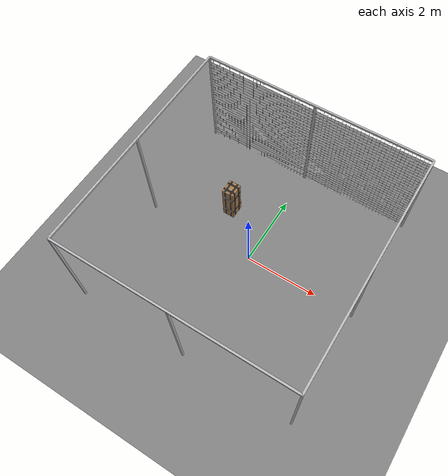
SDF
<sdf version="1.9">
 <world name="ecps295_lowbox_s19">
  <model name="ground_plane">
   <static>true</static>
   <link name="link">
    <collision name="collision">
     <geometry><plane><normal>0 0 1</normal><size>50 50</size></plane></geometry>
    </collision>
    <visual name="visual">
     <geometry><plane><normal>0 0 1</normal><size>50 50</size></plane></geometry>
     <material><ambient>0.5 0.5 0.5 1</ambient><diffuse>0.5 0.5 0.5 1</diffuse></material>
    </visual>
   </link>
  </model>
  <model name="cage_frame">
   <static>true</static>
   <link name="link">
    <visual name="post0_0">
     <pose>-3.050 -3.050 1.525 0 0 0.0000</pose>
     <geometry><box><size>0.050 0.050 3.050</size></box></geometry>
     <material><ambient>0.72 0.72 0.74 1</ambient><diffuse>0.72 0.72 0.74 1</diffuse></material>
    </visual>
    <visual name="post0_1">
     <pose>-3.050 0.000 1.525 0 0 0.0000</pose>
     <geometry><box><size>0.050 0.050 3.050</size></box></geometry>
     <material><ambient>0.72 0.72 0.74 1</ambient><diffuse>0.72 0.72 0.74 1</diffuse></material>
    </visual>
    <visual name="post0_2">
     <pose>-3.050 3.050 1.525 0 0 0.0000</pose>
     <geometry><box><size>0.050 0.050 3.050</size></box></geometry>
     <material><ambient>0.72 0.72 0.74 1</ambient><diffuse>0.72 0.72 0.74 1</diffuse></material>
    </visual>
    <visual name="post1_0">
     <pose>0.000 -3.050 1.525 0 0 0.0000</pose>
     <geometry><box><size>0.050 0.050 3.050</size></box></geometry>
     <material><ambient>0.72 0.72 0.74 1</ambient><diffuse>0.72 0.72 0.74 1</diffuse></material>
    </visual>
    <visual name="post1_2">
     <pose>0.000 3.050 1.525 0 0 0.0000</pose>
     <geometry><box><size>0.050 0.050 3.050</size></box></geometry>
     <material><ambient>0.72 0.72 0.74 1</ambient><diffuse>0.72 0.72 0.74 1</diffuse></material>
    </visual>
    <visual name="post2_0">
     <pose>3.050 -3.050 1.525 0 0 0.0000</pose>
     <geometry><box><size>0.050 0.050 3.050</size></box></geometry>
     <material><ambient>0.72 0.72 0.74 1</ambient><diffuse>0.72 0.72 0.74 1</diffuse></material>
    </visual>
    <visual name="post2_1">
     <pose>3.050 0.000 1.525 0 0 0.0000</pose>
     <geometry><box><size>0.050 0.050 3.050</size></box></geometry>
     <material><ambient>0.72 0.72 0.74 1</ambient><diffuse>0.72 0.72 0.74 1</diffuse></material>
    </visual>
    <visual name="post2_2">
     <pose>3.050 3.050 1.525 0 0 0.0000</pose>
     <geometry><box><size>0.050 0.050 3.050</size></box></geometry>
     <material><ambient>0.72 0.72 0.74 1</ambient><diffuse>0.72 0.72 0.74 1</diffuse></material>
    </visual>
    <visual name="railx0">
     <pose>0.000 -3.050 3.050 0 0 0.0000</pose>
     <geometry><box><size>6.100 0.050 0.050</size></box></geometry>
     <material><ambient>0.72 0.72 0.74 1</ambient><diffuse>0.72 0.72 0.74 1</diffuse></material>
    </visual>
    <visual name="raily0">
     <pose>-3.050 0.000 3.050 0 0 0.0000</pose>
     <geometry><box><size>0.050 6.100 0.050</size></box></geometry>
     <material><ambient>0.72 0.72 0.74 1</ambient><diffuse>0.72 0.72 0.74 1</diffuse></material>
    </visual>
    <visual name="railx1">
     <pose>0.000 3.050 3.050 0 0 0.0000</pose>
     <geometry><box><size>6.100 0.050 0.050</size></box></geometry>
     <material><ambient>0.72 0.72 0.74 1</ambient><diffuse>0.72 0.72 0.74 1</diffuse></material>
    </visual>
    <visual name="raily1">
     <pose>3.050 0.000 3.050 0 0 0.0000</pose>
     <geometry><box><size>0.050 6.100 0.050</size></box></geometry>
     <material><ambient>0.72 0.72 0.74 1</ambient><diffuse>0.72 0.72 0.74 1</diffuse></material>
    </visual>
   </link>
  </model>
  <model name="net_n">
   <static>true</static>
   <link name="link">
    <collision name="c">
     <pose>0.000 3.050 1.525 0 0 0</pose>
     <geometry><box><size>6.100 0.020 3.050</size></box></geometry>
    </collision>
    <visual name="v0">
     <pose>-3.050 3.050 1.525 0 0 0.0000</pose>
     <geometry><box><size>0.004 0.004 3.050</size></box></geometry>
     <material><ambient>0.16 0.16 0.16 1</ambient><diffuse>0.16 0.16 0.16 1</diffuse></material>
    </visual>
    <visual name="v1">
     <pose>-2.950 3.050 1.525 0 0 0.0000</pose>
     <geometry><box><size>0.004 0.004 3.050</size></box></geometry>
     <material><ambient>0.16 0.16 0.16 1</ambient><diffuse>0.16 0.16 0.16 1</diffuse></material>
    </visual>
    <visual name="v2">
     <pose>-2.850 3.050 1.525 0 0 0.0000</pose>
     <geometry><box><size>0.004 0.004 3.050</size></box></geometry>
     <material><ambient>0.16 0.16 0.16 1</ambient><diffuse>0.16 0.16 0.16 1</diffuse></material>
    </visual>
    <visual name="v3">
     <pose>-2.750 3.050 1.525 0 0 0.0000</pose>
     <geometry><box><size>0.004 0.004 3.050</size></box></geometry>
     <material><ambient>0.16 0.16 0.16 1</ambient><diffuse>0.16 0.16 0.16 1</diffuse></material>
    </visual>
    <visual name="v4">
     <pose>-2.650 3.050 1.525 0 0 0.0000</pose>
     <geometry><box><size>0.004 0.004 3.050</size></box></geometry>
     <material><ambient>0.16 0.16 0.16 1</ambient><diffuse>0.16 0.16 0.16 1</diffuse></material>
    </visual>
    <visual name="v5">
     <pose>-2.550 3.050 1.525 0 0 0.0000</pose>
     <geometry><box><size>0.004 0.004 3.050</size></box></geometry>
     <material><ambient>0.16 0.16 0.16 1</ambient><diffuse>0.16 0.16 0.16 1</diffuse></material>
    </visual>
    <visual name="v6">
     <pose>-2.450 3.050 1.525 0 0 0.0000</pose>
     <geometry><box><size>0.004 0.004 3.050</size></box></geometry>
     <material><ambient>0.16 0.16 0.16 1</ambient><diffuse>0.16 0.16 0.16 1</diffuse></material>
    </visual>
    <visual name="v7">
     <pose>-2.350 3.050 1.525 0 0 0.0000</pose>
     <geometry><box><size>0.004 0.004 3.050</size></box></geometry>
     <material><ambient>0.16 0.16 0.16 1</ambient><diffuse>0.16 0.16 0.16 1</diffuse></material>
    </visual>
    <visual name="v8">
     <pose>-2.250 3.050 1.525 0 0 0.0000</pose>
     <geometry><box><size>0.004 0.004 3.050</size></box></geometry>
     <material><ambient>0.16 0.16 0.16 1</ambient><diffuse>0.16 0.16 0.16 1</diffuse></material>
    </visual>
    <visual name="v9">
     <pose>-2.150 3.050 1.525 0 0 0.0000</pose>
     <geometry><box><size>0.004 0.004 3.050</size></box></geometry>
     <material><ambient>0.16 0.16 0.16 1</ambient><diffuse>0.16 0.16 0.16 1</diffuse></material>
    </visual>
    <visual name="v10">
     <pose>-2.050 3.050 1.525 0 0 0.0000</pose>
     <geometry><box><size>0.004 0.004 3.050</size></box></geometry>
     <material><ambient>0.16 0.16 0.16 1</ambient><diffuse>0.16 0.16 0.16 1</diffuse></material>
    </visual>
    <visual name="v11">
     <pose>-1.950 3.050 1.525 0 0 0.0000</pose>
     <geometry><box><size>0.004 0.004 3.050</size></box></geometry>
     <material><ambient>0.16 0.16 0.16 1</ambient><diffuse>0.16 0.16 0.16 1</diffuse></material>
    </visual>
    <visual name="v12">
     <pose>-1.850 3.050 1.525 0 0 0.0000</pose>
     <geometry><box><size>0.004 0.004 3.050</size></box></geometry>
     <material><ambient>0.16 0.16 0.16 1</ambient><diffuse>0.16 0.16 0.16 1</diffuse></material>
    </visual>
    <visual name="v13">
     <pose>-1.750 3.050 1.525 0 0 0.0000</pose>
     <geometry><box><size>0.004 0.004 3.050</size></box></geometry>
     <material><ambient>0.16 0.16 0.16 1</ambient><diffuse>0.16 0.16 0.16 1</diffuse></material>
    </visual>
    <visual name="v14">
     <pose>-1.650 3.050 1.525 0 0 0.0000</pose>
     <geometry><box><size>0.004 0.004 3.050</size></box></geometry>
     <material><ambient>0.16 0.16 0.16 1</ambient><diffuse>0.16 0.16 0.16 1</diffuse></material>
    </visual>
    <visual name="v15">
     <pose>-1.550 3.050 1.525 0 0 0.0000</pose>
     <geometry><box><size>0.004 0.004 3.050</size></box></geometry>
     <material><ambient>0.16 0.16 0.16 1</ambient><diffuse>0.16 0.16 0.16 1</diffuse></material>
    </visual>
    <visual name="v16">
     <pose>-1.450 3.050 1.525 0 0 0.0000</pose>
     <geometry><box><size>0.004 0.004 3.050</size></box></geometry>
     <material><ambient>0.16 0.16 0.16 1</ambient><diffuse>0.16 0.16 0.16 1</diffuse></material>
    </visual>
    <visual name="v17">
     <pose>-1.350 3.050 1.525 0 0 0.0000</pose>
     <geometry><box><size>0.004 0.004 3.050</size></box></geometry>
     <material><ambient>0.16 0.16 0.16 1</ambient><diffuse>0.16 0.16 0.16 1</diffuse></material>
    </visual>
    <visual name="v18">
     <pose>-1.250 3.050 1.525 0 0 0.0000</pose>
     <geometry><box><size>0.004 0.004 3.050</size></box></geometry>
     <material><ambient>0.16 0.16 0.16 1</ambient><diffuse>0.16 0.16 0.16 1</diffuse></material>
    </visual>
    <visual name="v19">
     <pose>-1.150 3.050 1.525 0 0 0.0000</pose>
     <geometry><box><size>0.004 0.004 3.050</size></box></geometry>
     <material><ambient>0.16 0.16 0.16 1</ambient><diffuse>0.16 0.16 0.16 1</diffuse></material>
    </visual>
    <visual name="v20">
     <pose>-1.050 3.050 1.525 0 0 0.0000</pose>
     <geometry><box><size>0.004 0.004 3.050</size></box></geometry>
     <material><ambient>0.16 0.16 0.16 1</ambient><diffuse>0.16 0.16 0.16 1</diffuse></material>
    </visual>
    <visual name="v21">
     <pose>-0.950 3.050 1.525 0 0 0.0000</pose>
     <geometry><box><size>0.004 0.004 3.050</size></box></geometry>
     <material><ambient>0.16 0.16 0.16 1</ambient><diffuse>0.16 0.16 0.16 1</diffuse></material>
    </visual>
    <visual name="v22">
     <pose>-0.850 3.050 1.525 0 0 0.0000</pose>
     <geometry><box><size>0.004 0.004 3.050</size></box></geometry>
     <material><ambient>0.16 0.16 0.16 1</ambient><diffuse>0.16 0.16 0.16 1</diffuse></material>
    </visual>
    <visual name="v23">
     <pose>-0.750 3.050 1.525 0 0 0.0000</pose>
     <geometry><box><size>0.004 0.004 3.050</size></box></geometry>
     <material><ambient>0.16 0.16 0.16 1</ambient><diffuse>0.16 0.16 0.16 1</diffuse></material>
    </visual>
    <visual name="v24">
     <pose>-0.650 3.050 1.525 0 0 0.0000</pose>
     <geometry><box><size>0.004 0.004 3.050</size></box></geometry>
     <material><ambient>0.16 0.16 0.16 1</ambient><diffuse>0.16 0.16 0.16 1</diffuse></material>
    </visual>
    <visual name="v25">
     <pose>-0.550 3.050 1.525 0 0 0.0000</pose>
     <geometry><box><size>0.004 0.004 3.050</size></box></geometry>
     <material><ambient>0.16 0.16 0.16 1</ambient><diffuse>0.16 0.16 0.16 1</diffuse></material>
    </visual>
    <visual name="v26">
     <pose>-0.450 3.050 1.525 0 0 0.0000</pose>
     <geometry><box><size>0.004 0.004 3.050</size></box></geometry>
     <material><ambient>0.16 0.16 0.16 1</ambient><diffuse>0.16 0.16 0.16 1</diffuse></material>
    </visual>
    <visual name="v27">
     <pose>-0.350 3.050 1.525 0 0 0.0000</pose>
     <geometry><box><size>0.004 0.004 3.050</size></box></geometry>
     <material><ambient>0.16 0.16 0.16 1</ambient><diffuse>0.16 0.16 0.16 1</diffuse></material>
    </visual>
    <visual name="v28">
     <pose>-0.250 3.050 1.525 0 0 0.0000</pose>
     <geometry><box><size>0.004 0.004 3.050</size></box></geometry>
     <material><ambient>0.16 0.16 0.16 1</ambient><diffuse>0.16 0.16 0.16 1</diffuse></material>
    </visual>
    <visual name="v29">
     <pose>-0.150 3.050 1.525 0 0 0.0000</pose>
     <geometry><box><size>0.004 0.004 3.050</size></box></geometry>
     <material><ambient>0.16 0.16 0.16 1</ambient><diffuse>0.16 0.16 0.16 1</diffuse></material>
    </visual>
    <visual name="v30">
     <pose>-0.050 3.050 1.525 0 0 0.0000</pose>
     <geometry><box><size>0.004 0.004 3.050</size></box></geometry>
     <material><ambient>0.16 0.16 0.16 1</ambient><diffuse>0.16 0.16 0.16 1</diffuse></material>
    </visual>
    <visual name="v31">
     <pose>0.050 3.050 1.525 0 0 0.0000</pose>
     <geometry><box><size>0.004 0.004 3.050</size></box></geometry>
     <material><ambient>0.16 0.16 0.16 1</ambient><diffuse>0.16 0.16 0.16 1</diffuse></material>
    </visual>
    <visual name="v32">
     <pose>0.150 3.050 1.525 0 0 0.0000</pose>
     <geometry><box><size>0.004 0.004 3.050</size></box></geometry>
     <material><ambient>0.16 0.16 0.16 1</ambient><diffuse>0.16 0.16 0.16 1</diffuse></material>
    </visual>
    <visual name="v33">
     <pose>0.250 3.050 1.525 0 0 0.0000</pose>
     <geometry><box><size>0.004 0.004 3.050</size></box></geometry>
     <material><ambient>0.16 0.16 0.16 1</ambient><diffuse>0.16 0.16 0.16 1</diffuse></material>
    </visual>
    <visual name="v34">
     <pose>0.350 3.050 1.525 0 0 0.0000</pose>
     <geometry><box><size>0.004 0.004 3.050</size></box></geometry>
     <material><ambient>0.16 0.16 0.16 1</ambient><diffuse>0.16 0.16 0.16 1</diffuse></material>
    </visual>
    <visual name="v35">
     <pose>0.450 3.050 1.525 0 0 0.0000</pose>
     <geometry><box><size>0.004 0.004 3.050</size></box></geometry>
     <material><ambient>0.16 0.16 0.16 1</ambient><diffuse>0.16 0.16 0.16 1</diffuse></material>
    </visual>
    <visual name="v36">
     <pose>0.550 3.050 1.525 0 0 0.0000</pose>
     <geometry><box><size>0.004 0.004 3.050</size></box></geometry>
     <material><ambient>0.16 0.16 0.16 1</ambient><diffuse>0.16 0.16 0.16 1</diffuse></material>
    </visual>
    <visual name="v37">
     <pose>0.650 3.050 1.525 0 0 0.0000</pose>
     <geometry><box><size>0.004 0.004 3.050</size></box></geometry>
     <material><ambient>0.16 0.16 0.16 1</ambient><diffuse>0.16 0.16 0.16 1</diffuse></material>
    </visual>
    <visual name="v38">
     <pose>0.750 3.050 1.525 0 0 0.0000</pose>
     <geometry><box><size>0.004 0.004 3.050</size></box></geometry>
     <material><ambient>0.16 0.16 0.16 1</ambient><diffuse>0.16 0.16 0.16 1</diffuse></material>
    </visual>
    <visual name="v39">
     <pose>0.850 3.050 1.525 0 0 0.0000</pose>
     <geometry><box><size>0.004 0.004 3.050</size></box></geometry>
     <material><ambient>0.16 0.16 0.16 1</ambient><diffuse>0.16 0.16 0.16 1</diffuse></material>
    </visual>
    <visual name="v40">
     <pose>0.950 3.050 1.525 0 0 0.0000</pose>
     <geometry><box><size>0.004 0.004 3.050</size></box></geometry>
     <material><ambient>0.16 0.16 0.16 1</ambient><diffuse>0.16 0.16 0.16 1</diffuse></material>
    </visual>
    <visual name="v41">
     <pose>1.050 3.050 1.525 0 0 0.0000</pose>
     <geometry><box><size>0.004 0.004 3.050</size></box></geometry>
     <material><ambient>0.16 0.16 0.16 1</ambient><diffuse>0.16 0.16 0.16 1</diffuse></material>
    </visual>
    <visual name="v42">
     <pose>1.150 3.050 1.525 0 0 0.0000</pose>
     <geometry><box><size>0.004 0.004 3.050</size></box></geometry>
     <material><ambient>0.16 0.16 0.16 1</ambient><diffuse>0.16 0.16 0.16 1</diffuse></material>
    </visual>
    <visual name="v43">
     <pose>1.250 3.050 1.525 0 0 0.0000</pose>
     <geometry><box><size>0.004 0.004 3.050</size></box></geometry>
     <material><ambient>0.16 0.16 0.16 1</ambient><diffuse>0.16 0.16 0.16 1</diffuse></material>
    </visual>
    <visual name="v44">
     <pose>1.350 3.050 1.525 0 0 0.0000</pose>
     <geometry><box><size>0.004 0.004 3.050</size></box></geometry>
     <material><ambient>0.16 0.16 0.16 1</ambient><diffuse>0.16 0.16 0.16 1</diffuse></material>
    </visual>
    <visual name="v45">
     <pose>1.450 3.050 1.525 0 0 0.0000</pose>
     <geometry><box><size>0.004 0.004 3.050</size></box></geometry>
     <material><ambient>0.16 0.16 0.16 1</ambient><diffuse>0.16 0.16 0.16 1</diffuse></material>
    </visual>
    <visual name="v46">
     <pose>1.550 3.050 1.525 0 0 0.0000</pose>
     <geometry><box><size>0.004 0.004 3.050</size></box></geometry>
     <material><ambient>0.16 0.16 0.16 1</ambient><diffuse>0.16 0.16 0.16 1</diffuse></material>
    </visual>
    <visual name="v47">
     <pose>1.650 3.050 1.525 0 0 0.0000</pose>
     <geometry><box><size>0.004 0.004 3.050</size></box></geometry>
     <material><ambient>0.16 0.16 0.16 1</ambient><diffuse>0.16 0.16 0.16 1</diffuse></material>
    </visual>
    <visual name="v48">
     <pose>1.750 3.050 1.525 0 0 0.0000</pose>
     <geometry><box><size>0.004 0.004 3.050</size></box></geometry>
     <material><ambient>0.16 0.16 0.16 1</ambient><diffuse>0.16 0.16 0.16 1</diffuse></material>
    </visual>
    <visual name="v49">
     <pose>1.850 3.050 1.525 0 0 0.0000</pose>
     <geometry><box><size>0.004 0.004 3.050</size></box></geometry>
     <material><ambient>0.16 0.16 0.16 1</ambient><diffuse>0.16 0.16 0.16 1</diffuse></material>
    </visual>
    <visual name="v50">
     <pose>1.950 3.050 1.525 0 0 0.0000</pose>
     <geometry><box><size>0.004 0.004 3.050</size></box></geometry>
     <material><ambient>0.16 0.16 0.16 1</ambient><diffuse>0.16 0.16 0.16 1</diffuse></material>
    </visual>
    <visual name="v51">
     <pose>2.050 3.050 1.525 0 0 0.0000</pose>
     <geometry><box><size>0.004 0.004 3.050</size></box></geometry>
     <material><ambient>0.16 0.16 0.16 1</ambient><diffuse>0.16 0.16 0.16 1</diffuse></material>
    </visual>
    <visual name="v52">
     <pose>2.150 3.050 1.525 0 0 0.0000</pose>
     <geometry><box><size>0.004 0.004 3.050</size></box></geometry>
     <material><ambient>0.16 0.16 0.16 1</ambient><diffuse>0.16 0.16 0.16 1</diffuse></material>
    </visual>
    <visual name="v53">
     <pose>2.250 3.050 1.525 0 0 0.0000</pose>
     <geometry><box><size>0.004 0.004 3.050</size></box></geometry>
     <material><ambient>0.16 0.16 0.16 1</ambient><diffuse>0.16 0.16 0.16 1</diffuse></material>
    </visual>
    <visual name="v54">
     <pose>2.350 3.050 1.525 0 0 0.0000</pose>
     <geometry><box><size>0.004 0.004 3.050</size></box></geometry>
     <material><ambient>0.16 0.16 0.16 1</ambient><diffuse>0.16 0.16 0.16 1</diffuse></material>
    </visual>
    <visual name="v55">
     <pose>2.450 3.050 1.525 0 0 0.0000</pose>
     <geometry><box><size>0.004 0.004 3.050</size></box></geometry>
     <material><ambient>0.16 0.16 0.16 1</ambient><diffuse>0.16 0.16 0.16 1</diffuse></material>
    </visual>
    <visual name="v56">
     <pose>2.550 3.050 1.525 0 0 0.0000</pose>
     <geometry><box><size>0.004 0.004 3.050</size></box></geometry>
     <material><ambient>0.16 0.16 0.16 1</ambient><diffuse>0.16 0.16 0.16 1</diffuse></material>
    </visual>
    <visual name="v57">
     <pose>2.650 3.050 1.525 0 0 0.0000</pose>
     <geometry><box><size>0.004 0.004 3.050</size></box></geometry>
     <material><ambient>0.16 0.16 0.16 1</ambient><diffuse>0.16 0.16 0.16 1</diffuse></material>
    </visual>
    <visual name="v58">
     <pose>2.750 3.050 1.525 0 0 0.0000</pose>
     <geometry><box><size>0.004 0.004 3.050</size></box></geometry>
     <material><ambient>0.16 0.16 0.16 1</ambient><diffuse>0.16 0.16 0.16 1</diffuse></material>
    </visual>
    <visual name="v59">
     <pose>2.850 3.050 1.525 0 0 0.0000</pose>
     <geometry><box><size>0.004 0.004 3.050</size></box></geometry>
     <material><ambient>0.16 0.16 0.16 1</ambient><diffuse>0.16 0.16 0.16 1</diffuse></material>
    </visual>
    <visual name="v60">
     <pose>2.950 3.050 1.525 0 0 0.0000</pose>
     <geometry><box><size>0.004 0.004 3.050</size></box></geometry>
     <material><ambient>0.16 0.16 0.16 1</ambient><diffuse>0.16 0.16 0.16 1</diffuse></material>
    </visual>
    <visual name="h1">
     <pose>0.000 3.050 0.100 0 0 0.0000</pose>
     <geometry><box><size>6.100 0.004 0.004</size></box></geometry>
     <material><ambient>0.16 0.16 0.16 1</ambient><diffuse>0.16 0.16 0.16 1</diffuse></material>
    </visual>
    <visual name="h2">
     <pose>0.000 3.050 0.200 0 0 0.0000</pose>
     <geometry><box><size>6.100 0.004 0.004</size></box></geometry>
     <material><ambient>0.16 0.16 0.16 1</ambient><diffuse>0.16 0.16 0.16 1</diffuse></material>
    </visual>
    <visual name="h3">
     <pose>0.000 3.050 0.300 0 0 0.0000</pose>
     <geometry><box><size>6.100 0.004 0.004</size></box></geometry>
     <material><ambient>0.16 0.16 0.16 1</ambient><diffuse>0.16 0.16 0.16 1</diffuse></material>
    </visual>
    <visual name="h4">
     <pose>0.000 3.050 0.400 0 0 0.0000</pose>
     <geometry><box><size>6.100 0.004 0.004</size></box></geometry>
     <material><ambient>0.16 0.16 0.16 1</ambient><diffuse>0.16 0.16 0.16 1</diffuse></material>
    </visual>
    <visual name="h5">
     <pose>0.000 3.050 0.500 0 0 0.0000</pose>
     <geometry><box><size>6.100 0.004 0.004</size></box></geometry>
     <material><ambient>0.16 0.16 0.16 1</ambient><diffuse>0.16 0.16 0.16 1</diffuse></material>
    </visual>
    <visual name="h6">
     <pose>0.000 3.050 0.600 0 0 0.0000</pose>
     <geometry><box><size>6.100 0.004 0.004</size></box></geometry>
     <material><ambient>0.16 0.16 0.16 1</ambient><diffuse>0.16 0.16 0.16 1</diffuse></material>
    </visual>
    <visual name="h7">
     <pose>0.000 3.050 0.700 0 0 0.0000</pose>
     <geometry><box><size>6.100 0.004 0.004</size></box></geometry>
     <material><ambient>0.16 0.16 0.16 1</ambient><diffuse>0.16 0.16 0.16 1</diffuse></material>
    </visual>
    <visual name="h8">
     <pose>0.000 3.050 0.800 0 0 0.0000</pose>
     <geometry><box><size>6.100 0.004 0.004</size></box></geometry>
     <material><ambient>0.16 0.16 0.16 1</ambient><diffuse>0.16 0.16 0.16 1</diffuse></material>
    </visual>
    <visual name="h9">
     <pose>0.000 3.050 0.900 0 0 0.0000</pose>
     <geometry><box><size>6.100 0.004 0.004</size></box></geometry>
     <material><ambient>0.16 0.16 0.16 1</ambient><diffuse>0.16 0.16 0.16 1</diffuse></material>
    </visual>
    <visual name="h10">
     <pose>0.000 3.050 1.000 0 0 0.0000</pose>
     <geometry><box><size>6.100 0.004 0.004</size></box></geometry>
     <material><ambient>0.16 0.16 0.16 1</ambient><diffuse>0.16 0.16 0.16 1</diffuse></material>
    </visual>
    <visual name="h11">
     <pose>0.000 3.050 1.100 0 0 0.0000</pose>
     <geometry><box><size>6.100 0.004 0.004</size></box></geometry>
     <material><ambient>0.16 0.16 0.16 1</ambient><diffuse>0.16 0.16 0.16 1</diffuse></material>
    </visual>
    <visual name="h12">
     <pose>0.000 3.050 1.200 0 0 0.0000</pose>
     <geometry><box><size>6.100 0.004 0.004</size></box></geometry>
     <material><ambient>0.16 0.16 0.16 1</ambient><diffuse>0.16 0.16 0.16 1</diffuse></material>
    </visual>
    <visual name="h13">
     <pose>0.000 3.050 1.300 0 0 0.0000</pose>
     <geometry><box><size>6.100 0.004 0.004</size></box></geometry>
     <material><ambient>0.16 0.16 0.16 1</ambient><diffuse>0.16 0.16 0.16 1</diffuse></material>
    </visual>
    <visual name="h14">
     <pose>0.000 3.050 1.400 0 0 0.0000</pose>
     <geometry><box><size>6.100 0.004 0.004</size></box></geometry>
     <material><ambient>0.16 0.16 0.16 1</ambient><diffuse>0.16 0.16 0.16 1</diffuse></material>
    </visual>
    <visual name="h15">
     <pose>0.000 3.050 1.500 0 0 0.0000</pose>
     <geometry><box><size>6.100 0.004 0.004</size></box></geometry>
     <material><ambient>0.16 0.16 0.16 1</ambient><diffuse>0.16 0.16 0.16 1</diffuse></material>
    </visual>
    <visual name="h16">
     <pose>0.000 3.050 1.600 0 0 0.0000</pose>
     <geometry><box><size>6.100 0.004 0.004</size></box></geometry>
     <material><ambient>0.16 0.16 0.16 1</ambient><diffuse>0.16 0.16 0.16 1</diffuse></material>
    </visual>
    <visual name="h17">
     <pose>0.000 3.050 1.700 0 0 0.0000</pose>
     <geometry><box><size>6.100 0.004 0.004</size></box></geometry>
     <material><ambient>0.16 0.16 0.16 1</ambient><diffuse>0.16 0.16 0.16 1</diffuse></material>
    </visual>
    <visual name="h18">
     <pose>0.000 3.050 1.800 0 0 0.0000</pose>
     <geometry><box><size>6.100 0.004 0.004</size></box></geometry>
     <material><ambient>0.16 0.16 0.16 1</ambient><diffuse>0.16 0.16 0.16 1</diffuse></material>
    </visual>
    <visual name="h19">
     <pose>0.000 3.050 1.900 0 0 0.0000</pose>
     <geometry><box><size>6.100 0.004 0.004</size></box></geometry>
     <material><ambient>0.16 0.16 0.16 1</ambient><diffuse>0.16 0.16 0.16 1</diffuse></material>
    </visual>
    <visual name="h20">
     <pose>0.000 3.050 2.000 0 0 0.0000</pose>
     <geometry><box><size>6.100 0.004 0.004</size></box></geometry>
     <material><ambient>0.16 0.16 0.16 1</ambient><diffuse>0.16 0.16 0.16 1</diffuse></material>
    </visual>
    <visual name="h21">
     <pose>0.000 3.050 2.100 0 0 0.0000</pose>
     <geometry><box><size>6.100 0.004 0.004</size></box></geometry>
     <material><ambient>0.16 0.16 0.16 1</ambient><diffuse>0.16 0.16 0.16 1</diffuse></material>
    </visual>
    <visual name="h22">
     <pose>0.000 3.050 2.200 0 0 0.0000</pose>
     <geometry><box><size>6.100 0.004 0.004</size></box></geometry>
     <material><ambient>0.16 0.16 0.16 1</ambient><diffuse>0.16 0.16 0.16 1</diffuse></material>
    </visual>
    <visual name="h23">
     <pose>0.000 3.050 2.300 0 0 0.0000</pose>
     <geometry><box><size>6.100 0.004 0.004</size></box></geometry>
     <material><ambient>0.16 0.16 0.16 1</ambient><diffuse>0.16 0.16 0.16 1</diffuse></material>
    </visual>
    <visual name="h24">
     <pose>0.000 3.050 2.400 0 0 0.0000</pose>
     <geometry><box><size>6.100 0.004 0.004</size></box></geometry>
     <material><ambient>0.16 0.16 0.16 1</ambient><diffuse>0.16 0.16 0.16 1</diffuse></material>
    </visual>
    <visual name="h25">
     <pose>0.000 3.050 2.500 0 0 0.0000</pose>
     <geometry><box><size>6.100 0.004 0.004</size></box></geometry>
     <material><ambient>0.16 0.16 0.16 1</ambient><diffuse>0.16 0.16 0.16 1</diffuse></material>
    </visual>
    <visual name="h26">
     <pose>0.000 3.050 2.600 0 0 0.0000</pose>
     <geometry><box><size>6.100 0.004 0.004</size></box></geometry>
     <material><ambient>0.16 0.16 0.16 1</ambient><diffuse>0.16 0.16 0.16 1</diffuse></material>
    </visual>
    <visual name="h27">
     <pose>0.000 3.050 2.700 0 0 0.0000</pose>
     <geometry><box><size>6.100 0.004 0.004</size></box></geometry>
     <material><ambient>0.16 0.16 0.16 1</ambient><diffuse>0.16 0.16 0.16 1</diffuse></material>
    </visual>
    <visual name="h28">
     <pose>0.000 3.050 2.800 0 0 0.0000</pose>
     <geometry><box><size>6.100 0.004 0.004</size></box></geometry>
     <material><ambient>0.16 0.16 0.16 1</ambient><diffuse>0.16 0.16 0.16 1</diffuse></material>
    </visual>
    <visual name="h29">
     <pose>0.000 3.050 2.900 0 0 0.0000</pose>
     <geometry><box><size>6.100 0.004 0.004</size></box></geometry>
     <material><ambient>0.16 0.16 0.16 1</ambient><diffuse>0.16 0.16 0.16 1</diffuse></material>
    </visual>
    <visual name="h30">
     <pose>0.000 3.050 3.000 0 0 0.0000</pose>
     <geometry><box><size>6.100 0.004 0.004</size></box></geometry>
     <material><ambient>0.16 0.16 0.16 1</ambient><diffuse>0.16 0.16 0.16 1</diffuse></material>
    </visual>
   </link>
  </model>
  <model name="lb4">
   <static>true</static>
   <pose>-1.18 1.04 0.55 0 0 0</pose>
   <link name="link">
    <collision name="c"><geometry><box><size>0.33 0.39 1.1</size></box></geometry></collision>
    <visual name="v">
     <geometry><box><size>0.33 0.39 1.1</size></box></geometry>
     <material><ambient>0.65 0.48 0.30 1</ambient><diffuse>0.65 0.48 0.30 1</diffuse></material>
    </visual>
    <visual name="tape_ring0">
     <pose>0.000 0.000 -0.275 0 0 0</pose>
     <geometry><box><size>0.334 0.394 0.050</size></box></geometry>
     <material><ambient>0.18 0.18 0.18 1</ambient><diffuse>0.18 0.18 0.18 1</diffuse></material>
    </visual>
    <visual name="tape_bx0">
     <pose>-0.083 0.000 0.000 0 0 0</pose>
     <geometry><box><size>0.050 0.394 1.104</size></box></geometry>
     <material><ambient>0.18 0.18 0.18 1</ambient><diffuse>0.18 0.18 0.18 1</diffuse></material>
    </visual>
    <visual name="tape_by0">
     <pose>0.000 -0.098 0.000 0 0 0</pose>
     <geometry><box><size>0.334 0.050 1.104</size></box></geometry>
     <material><ambient>0.18 0.18 0.18 1</ambient><diffuse>0.18 0.18 0.18 1</diffuse></material>
    </visual>
    <visual name="tape_ring1">
     <pose>0.000 0.000 0.275 0 0 0</pose>
     <geometry><box><size>0.334 0.394 0.050</size></box></geometry>
     <material><ambient>0.18 0.18 0.18 1</ambient><diffuse>0.18 0.18 0.18 1</diffuse></material>
    </visual>
    <visual name="tape_bx1">
     <pose>0.083 0.000 0.000 0 0 0</pose>
     <geometry><box><size>0.050 0.394 1.104</size></box></geometry>
     <material><ambient>0.18 0.18 0.18 1</ambient><diffuse>0.18 0.18 0.18 1</diffuse></material>
    </visual>
    <visual name="tape_by1">
     <pose>0.000 0.098 0.000 0 0 0</pose>
     <geometry><box><size>0.334 0.050 1.104</size></box></geometry>
     <material><ambient>0.18 0.18 0.18 1</ambient><diffuse>0.18 0.18 0.18 1</diffuse></material>
    </visual>
   </link>
  </model>
 </world>
</sdf>
